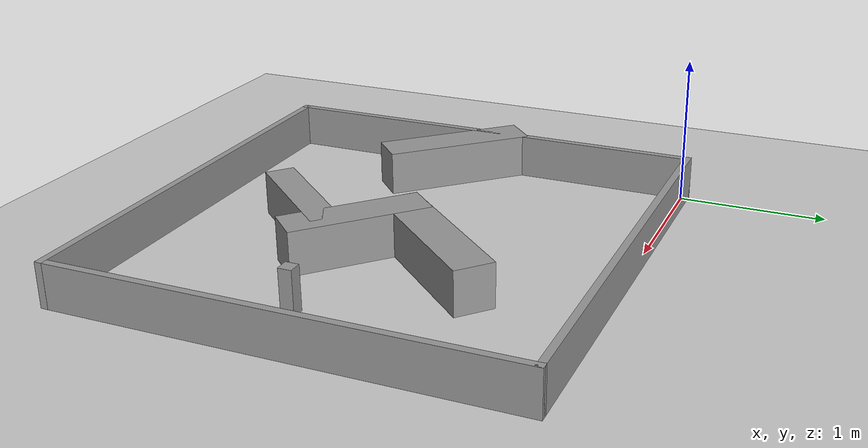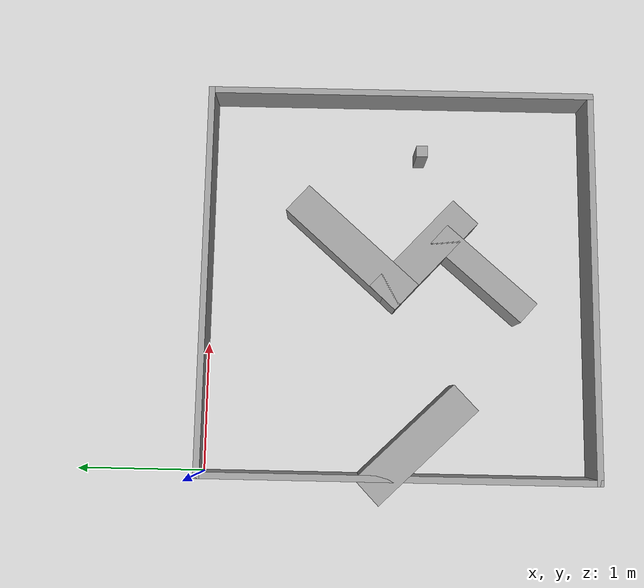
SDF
<sdf version="1.6">
 <world name="default">
  <light name="sun" type="directional">
   <pose>0 0 10 0 -0 0</pose>
   <diffuse>0.8 0.8 0.8 1</diffuse>
   <specular>0.1 0.1 0.1 1</specular>
   <attenuation>
    <range>1000</range>
    <constant>0.9</constant>
    <linear>0.01</linear>
    <quadratic>0.001</quadratic>
   </attenuation>
   <direction>-0.5 0.5 -1</direction>
  </light>
  <model name="ground_plane">
   <static>1</static>
   <link name="link">
    <collision name="collision">
     <geometry><plane><normal>0 0 1</normal><size>100 100</size></plane></geometry>
     <surface><friction><ode><mu>100</mu><mu2>50</mu2></ode></friction></surface>
    </collision>
    <visual name="visual">
     <cast_shadows>0</cast_shadows>
     <geometry><plane><normal>0 0 1</normal><size>100 100</size></plane></geometry>
     <material>
      <script><uri>file://media/materials/scripts/gazebo.material</uri><name>Gazebo/Grey</name></script>
     </material>
    </visual>
   </link>
  </model>
  <gravity>0 0 -9.8</gravity>
  <magnetic_field>6e-06 2.3e-05 -4.2e-05</magnetic_field>
  <atmosphere type="adiabatic"/>
  <physics name="default_physics" default="0" type="ode">
   <max_step_size>0.001</max_step_size>
   <real_time_factor>1</real_time_factor>
   <real_time_update_rate>1000.0</real_time_update_rate>
  </physics>
  <scene><ambient>0.4 0.4 0.4 1</ambient><background>0.7 0.7 0.7 1</background><shadows>1</shadows></scene>
  <spherical_coordinates>
   <surface_model>EARTH_WGS84</surface_model>
   <latitude_deg>0</latitude_deg>
   <longitude_deg>0</longitude_deg>
   <elevation>0</elevation>
   <heading_deg>0</heading_deg>
  </spherical_coordinates>
  <model name="Untitled">
   <pose>1.42124 -1.50195 0 0 -0 0</pose>
   <link name="Wall_0">
    <collision name="Wall_0_Collision">
     <geometry><box><size>3.1 0.05 0.3</size></box></geometry>
     <pose>0 0 0.15 0 -0 0</pose>
    </collision>
    <visual name="Wall_0_Visual">
     <pose>0 0 0.15 0 -0 0</pose>
     <geometry><box><size>3.1 0.05 0.3</size></box></geometry>
     <material>
      <script><uri>file://media/materials/scripts/gazebo.material</uri><name>Gazebo/Grey</name></script>
      <ambient>1 1 1 1</ambient>
     </material>
    </visual>
    <pose>0.088437 1.525 0 0 -0 0</pose>
   </link>
   <link name="Wall_10">
    <collision name="Wall_10_Collision">
     <geometry><box><size>0.95417 0.27 0.3</size></box></geometry>
     <pose>0 0 0.15 0 -0 0</pose>
    </collision>
    <visual name="Wall_10_Visual">
     <pose>0 0 0.15 0 -0 0</pose>
     <geometry><box><size>0.95417 0.27 0.3</size></box></geometry>
     <material>
      <script><uri>file://media/materials/scripts/gazebo.material</uri><name>Gazebo/Grey</name></script>
      <ambient>1 1 1 1</ambient>
     </material>
    </visual>
    <pose>0.289437 -0.1915 0 0 0 -0.751285</pose>
   </link>
   <link name="Wall_14">
    <collision name="Wall_14_Collision">
     <geometry><box><size>0.927742 0.2 0.3</size></box></geometry>
     <pose>0 0 0.15 0 -0 0</pose>
    </collision>
    <visual name="Wall_14_Visual">
     <pose>0 0 0.15 0 -0 0</pose>
     <geometry><box><size>0.927742 0.2 0.3</size></box></geometry>
     <material>
      <script><uri>file://media/materials/scripts/gazebo.material</uri><name>Gazebo/Grey</name></script>
      <ambient>1 1 1 1</ambient>
     </material>
    </visual>
    <pose>0.149437 -0.6565 0 0 -0 0.850544</pose>
   </link>
   <link name="Wall_16">
    <collision name="Wall_16_Collision">
     <geometry><box><size>1.048 0.27 0.3</size></box></geometry>
     <pose>0 0 0.15 0 -0 0</pose>
    </collision>
    <visual name="Wall_16_Visual">
     <pose>0 0 0.15 0 -0 0</pose>
     <geometry><box><size>1.048 0.27 0.3</size></box></geometry>
     <material>
      <script><uri>file://media/materials/scripts/gazebo.material</uri><name>Gazebo/Grey</name></script>
      <ambient>1 1 1 1</ambient>
     </material>
    </visual>
    <pose>-1.17856 -0.139 0 0 0 -0.807213</pose>
   </link>
   <link name="Wall_19">
    <collision name="Wall_19_Collision">
     <geometry><box><size>0.09 0.09 0.3</size></box></geometry>
     <pose>0 0 0.15 0 -0 0</pose>
    </collision>
    <visual name="Wall_19_Visual">
     <pose>0 0 0.15 0 -0 0</pose>
     <geometry><box><size>0.09 0.09 0.3</size></box></geometry>
     <material>
      <script><uri>file://media/materials/scripts/gazebo.material</uri><name>Gazebo/Grey</name></script>
      <ambient>1 1 1 1</ambient>
     </material>
    </visual>
    <pose>1.12944 -0.173 0 0 -0 0</pose>
   </link>
   <link name="Wall_2">
    <collision name="Wall_2_Collision">
     <geometry><box><size>3.1 0.05 0.3</size></box></geometry>
     <pose>0 0 0.15 0 -0 0</pose>
    </collision>
    <visual name="Wall_2_Visual">
     <pose>0 0 0.15 0 -0 0</pose>
     <geometry><box><size>3.1 0.05 0.3</size></box></geometry>
     <material>
      <script><uri>file://media/materials/scripts/gazebo.material</uri><name>Gazebo/Grey</name></script>
      <ambient>1 1 1 1</ambient>
     </material>
    </visual>
    <pose>1.61344 0 0 0 0 -1.5708</pose>
   </link>
   <link name="Wall_4">
    <collision name="Wall_4_Collision">
     <geometry><box><size>3.1 0.05 0.3</size></box></geometry>
     <pose>0 0 0.15 0 -0 0</pose>
    </collision>
    <visual name="Wall_4_Visual">
     <pose>0 0 0.15 0 -0 0</pose>
     <geometry><box><size>3.1 0.05 0.3</size></box></geometry>
     <material>
      <script><uri>file://media/materials/scripts/gazebo.material</uri><name>Gazebo/Grey</name></script>
      <ambient>1 1 1 1</ambient>
     </material>
    </visual>
    <pose>0.088437 -1.525 0 0 -0 3.14159</pose>
   </link>
   <link name="Wall_6">
    <collision name="Wall_6_Collision">
     <geometry><box><size>3.1 0.05 0.3</size></box></geometry>
     <pose>0 0 0.15 0 -0 0</pose>
    </collision>
    <visual name="Wall_6_Visual">
     <pose>0 0 0.15 0 -0 0</pose>
     <geometry><box><size>3.1 0.05 0.3</size></box></geometry>
     <material>
      <script><uri>file://media/materials/scripts/gazebo.material</uri><name>Gazebo/Grey</name></script>
      <ambient>1 1 1 1</ambient>
     </material>
    </visual>
    <pose>-1.43656 0 0 0 0 -1.5708</pose>
   </link>
   <link name="Wall_8">
    <collision name="Wall_8_Collision">
     <geometry><box><size>1.1679 0.27 0.3</size></box></geometry>
     <pose>0 0 0.15 0 -0 0</pose>
    </collision>
    <visual name="Wall_8_Visual">
     <pose>0 0 0.15 0 -0 0</pose>
     <geometry><box><size>1.1679 0.27 0.3</size></box></geometry>
     <material>
      <script><uri>file://media/materials/scripts/gazebo.material</uri><name>Gazebo/Grey</name></script>
      <ambient>1 1 1 1</ambient>
     </material>
    </visual>
    <pose>0.339437 0.376 0 0 0 -2.30262</pose>
   </link>
   <static>1</static>
  </model>
  <audio><device>default</device></audio>
 </world>
</sdf>
